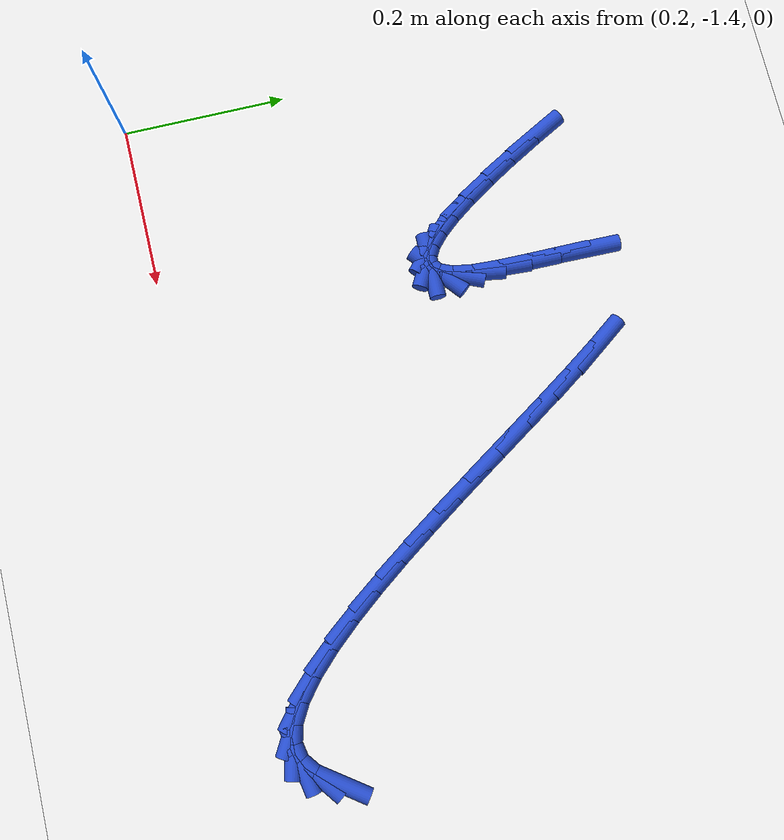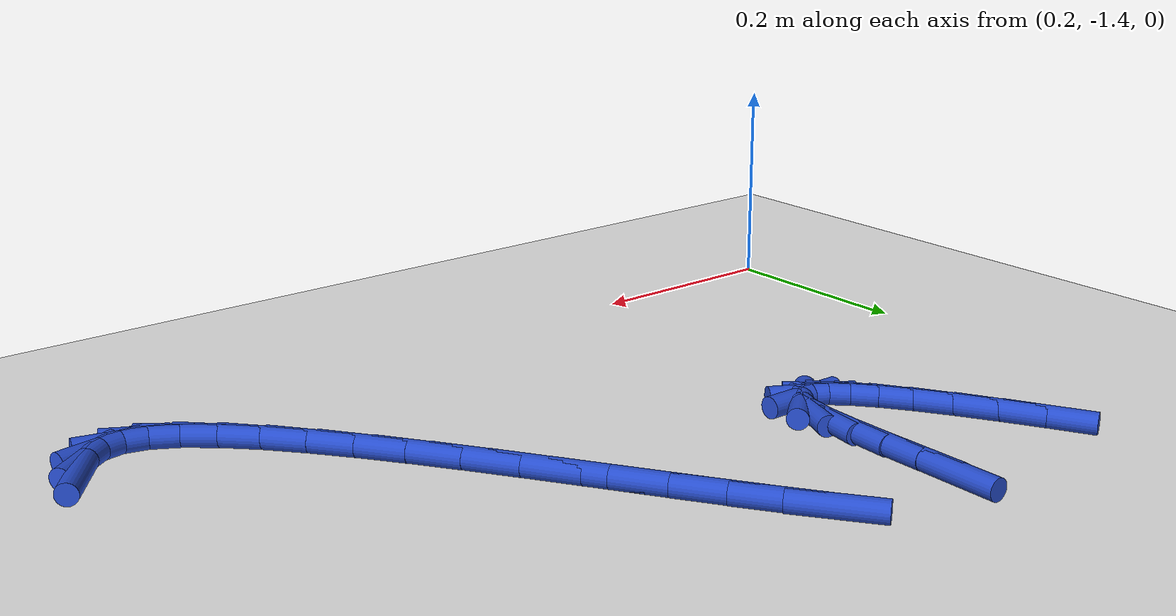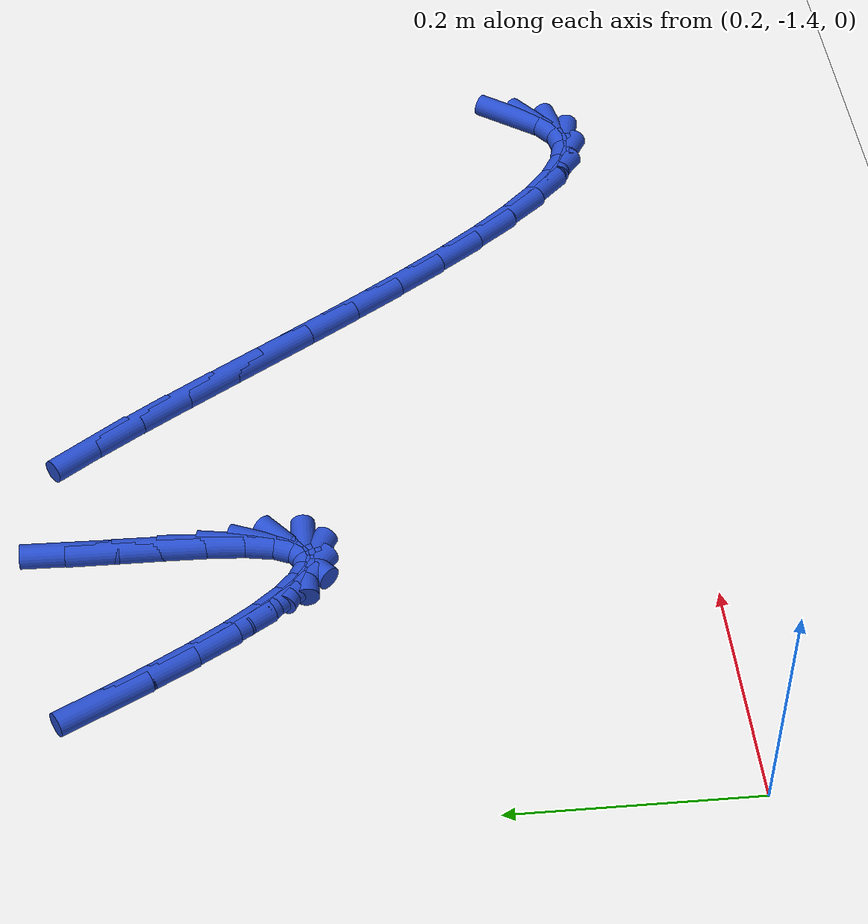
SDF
<sdf version="1.6">
 <world name="default">
  <model name="ground_plane">
   <static>1</static>
   <link name="link">
    <collision name="collision">
     <geometry><plane><normal>0 0 1</normal><size>100 100</size></plane></geometry>
     <surface><friction><ode><mu>100</mu><mu2>50</mu2></ode></friction></surface>
    </collision>
    <visual name="visual">
     <cast_shadows>0</cast_shadows>
     <geometry><plane><normal>0 0 1</normal><size>100 100</size></plane></geometry>
     <material>
      <script><uri>file://media/materials/scripts/gazebo.material</uri><name>Gazebo/WhiteGlow</name></script>
     </material>
    </visual>
   </link>
  </model>
  <model name="line">
   <link name="link_204">
    <pose>1.0149358839351472 -1.315371660204487 0.01 0 1.57 0.9497210597494069</pose>
    <collision name="collision">
     <geometry><cylinder><radius>0.01</radius><length>0.08</length></cylinder></geometry>
    </collision>
    <visual name="visual">
     <material>
      <script><name>Gazebo/Blue</name><uri>file://media/materials/scripts/gazebo.material</uri></script>
     </material>
     <geometry><cylinder><radius>0.01</radius><length>0.08</length></cylinder></geometry>
    </visual>
   </link>
   <link name="link_205">
    <pose>0.9994943688359417 -1.3369520810400668 0.01 0 1.57 0.6536612159513255</pose>
    <collision name="collision">
     <geometry><cylinder><radius>0.01</radius><length>0.08</length></cylinder></geometry>
    </collision>
    <visual name="visual">
     <material>
      <script><name>Gazebo/Blue</name><uri>file://media/materials/scripts/gazebo.material</uri></script>
     </material>
     <geometry><cylinder><radius>0.01</radius><length>0.08</length></cylinder></geometry>
    </visual>
   </link>
   <link name="link_206">
    <pose>0.9824374480888939 -1.3500176417549608 0.01 0 1.57 0.18041775010334993</pose>
    <collision name="collision">
     <geometry><cylinder><radius>0.01</radius><length>0.08</length></cylinder></geometry>
    </collision>
    <visual name="visual">
     <material>
      <script><name>Gazebo/Blue</name><uri>file://media/materials/scripts/gazebo.material</uri></script>
     </material>
     <geometry><cylinder><radius>0.01</radius><length>0.08</length></cylinder></geometry>
    </visual>
   </link>
   <link name="link_207">
    <pose>0.9631483671757025 -1.3535359921976053 0.01 0 1.57 -0.24284969932576397</pose>
    <collision name="collision">
     <geometry><cylinder><radius>0.01</radius><length>0.08</length></cylinder></geometry>
    </collision>
    <visual name="visual">
     <material>
      <script><name>Gazebo/Blue</name><uri>file://media/materials/scripts/gazebo.material</uri></script>
     </material>
     <geometry><cylinder><radius>0.01</radius><length>0.08</length></cylinder></geometry>
    </visual>
   </link>
   <link name="link_208">
    <pose>0.9418026137665831 -1.3482478128401583 0.01 0 1.57 -0.5171650507139692</pose>
    <collision name="collision">
     <geometry><cylinder><radius>0.01</radius><length>0.08</length></cylinder></geometry>
    </collision>
    <visual name="visual">
     <material>
      <script><name>Gazebo/Blue</name><uri>file://media/materials/scripts/gazebo.material</uri></script>
     </material>
     <geometry><cylinder><radius>0.01</radius><length>0.08</length></cylinder></geometry>
    </visual>
   </link>
   <link name="link_209">
    <pose>0.918661024050399 -1.3350847933429386 0.01 0 1.57 -0.6836927259176917</pose>
    <collision name="collision">
     <geometry><cylinder><radius>0.01</radius><length>0.08</length></cylinder></geometry>
    </collision>
    <visual name="visual">
     <material>
      <script><name>Gazebo/Blue</name><uri>file://media/materials/scripts/gazebo.material</uri></script>
     </material>
     <geometry><cylinder><radius>0.01</radius><length>0.08</length></cylinder></geometry>
    </visual>
   </link>
   <link name="link_210">
    <pose>0.893984434216017 -1.3149786233662681 0.01 0 1.57 -0.7886031113159906</pose>
    <collision name="collision">
     <geometry><cylinder><radius>0.01</radius><length>0.08</length></cylinder></geometry>
    </collision>
    <visual name="visual">
     <material>
      <script><name>Gazebo/Blue</name><uri>file://media/materials/scripts/gazebo.material</uri></script>
     </material>
     <geometry><cylinder><radius>0.01</radius><length>0.08</length></cylinder></geometry>
    </visual>
   </link>
   <link name="link_211">
    <pose>0.8680336804523 -1.288860992570465 0.01 0 1.57 -0.8580556711346509</pose>
    <collision name="collision">
     <geometry><cylinder><radius>0.01</radius><length>0.08</length></cylinder></geometry>
    </collision>
    <visual name="visual">
     <material>
      <script><name>Gazebo/Blue</name><uri>file://media/materials/scripts/gazebo.material</uri></script>
     </material>
     <geometry><cylinder><radius>0.01</radius><length>0.08</length></cylinder></geometry>
    </visual>
   </link>
   <link name="link_212">
    <pose>0.8410695989481146 -1.2576635906158513 0.01 0 1.57 -0.905787795485792</pose>
    <collision name="collision">
     <geometry><cylinder><radius>0.01</radius><length>0.08</length></cylinder></geometry>
    </collision>
    <visual name="visual">
     <material>
      <script><name>Gazebo/Blue</name><uri>file://media/materials/scripts/gazebo.material</uri></script>
     </material>
     <geometry><cylinder><radius>0.01</radius><length>0.08</length></cylinder></geometry>
    </visual>
   </link>
   <link name="link_213">
    <pose>0.8133530258923243 -1.2223181071627458 0.01 0 1.57 -0.9392370712360703</pose>
    <collision name="collision">
     <geometry><cylinder><radius>0.01</radius><length>0.08</length></cylinder></geometry>
    </collision>
    <visual name="visual">
     <material>
      <script><name>Gazebo/Blue</name><uri>file://media/materials/scripts/gazebo.material</uri></script>
     </material>
     <geometry><cylinder><radius>0.01</radius><length>0.08</length></cylinder></geometry>
    </visual>
   </link>
   <link name="link_214">
    <pose>0.7851447974737956 -1.1837562318714703 0.01 0 1.57 -0.9625978755651557</pose>
    <collision name="collision">
     <geometry><cylinder><radius>0.01</radius><length>0.08</length></cylinder></geometry>
    </collision>
    <visual name="visual">
     <material>
      <script><name>Gazebo/Blue</name><uri>file://media/materials/scripts/gazebo.material</uri></script>
     </material>
     <geometry><cylinder><radius>0.01</radius><length>0.08</length></cylinder></geometry>
    </visual>
   </link>
   <link name="link_215">
    <pose>0.7567057498813924 -1.142909654402344 0.01 0 1.57 -0.9782799273695868</pose>
    <collision name="collision">
     <geometry><cylinder><radius>0.01</radius><length>0.08</length></cylinder></geometry>
    </collision>
    <visual name="visual">
     <material>
      <script><name>Gazebo/Blue</name><uri>file://media/materials/scripts/gazebo.material</uri></script>
     </material>
     <geometry><cylinder><radius>0.01</radius><length>0.08</length></cylinder></geometry>
    </visual>
   </link>
   <link name="link_216">
    <pose>0.7282967193039789 -1.100710064415686 0.01 0 1.57 -0.987613337950633</pose>
    <collision name="collision">
     <geometry><cylinder><radius>0.01</radius><length>0.08</length></cylinder></geometry>
    </collision>
    <visual name="visual">
     <material>
      <script><name>Gazebo/Blue</name><uri>file://media/materials/scripts/gazebo.material</uri></script>
     </material>
     <geometry><cylinder><radius>0.01</radius><length>0.08</length></cylinder></geometry>
    </visual>
   </link>
   <link name="link_217">
    <pose>0.7001785419304215 -1.0580891515718185 0.01 0 1.57 -0.9911787876577066</pose>
    <collision name="collision">
     <geometry><cylinder><radius>0.01</radius><length>0.08</length></cylinder></geometry>
    </collision>
    <visual name="visual">
     <material>
      <script><name>Gazebo/Blue</name><uri>file://media/materials/scripts/gazebo.material</uri></script>
     </material>
     <geometry><cylinder><radius>0.01</radius><length>0.08</length></cylinder></geometry>
    </visual>
   </link>
   <link name="link_218">
    <pose>0.6726120539495836 -1.0159786055310593 0.01 0 1.57 -0.9889190592659488</pose>
    <collision name="collision">
     <geometry><cylinder><radius>0.01</radius><length>0.08</length></cylinder></geometry>
    </collision>
    <visual name="visual">
     <material>
      <script><name>Gazebo/Blue</name><uri>file://media/materials/scripts/gazebo.material</uri></script>
     </material>
     <geometry><cylinder><radius>0.01</radius><length>0.08</length></cylinder></geometry>
    </visual>
   </link>
   <link name="link_219">
    <pose>0.6458580915503318 -0.9753101159537316 0.01 0 1.57 -0.9800729635924398</pose>
    <collision name="collision">
     <geometry><cylinder><radius>0.01</radius><length>0.08</length></cylinder></geometry>
    </collision>
    <visual name="visual">
     <material>
      <script><name>Gazebo/Blue</name><uri>file://media/materials/scripts/gazebo.material</uri></script>
     </material>
     <geometry><cylinder><radius>0.01</radius><length>0.08</length></cylinder></geometry>
    </visual>
   </link>
   <link name="link_220">
    <pose>0.6201774909215295 -0.937015372500153 0.01 0 1.57 -0.962878497901356</pose>
    <collision name="collision">
     <geometry><cylinder><radius>0.01</radius><length>0.08</length></cylinder></geometry>
    </collision>
    <visual name="visual">
     <material>
      <script><name>Gazebo/Blue</name><uri>file://media/materials/scripts/gazebo.material</uri></script>
     </material>
     <geometry><cylinder><radius>0.01</radius><length>0.08</length></cylinder></geometry>
    </visual>
   </link>
   <link name="link_221">
    <pose>0.595831088252043 -0.9020260648306455 0.01 0 1.57 -0.9338362417776053</pose>
    <collision name="collision">
     <geometry><cylinder><radius>0.01</radius><length>0.08</length></cylinder></geometry>
    </collision>
    <visual name="visual">
     <material>
      <script><name>Gazebo/Blue</name><uri>file://media/materials/scripts/gazebo.material</uri></script>
     </material>
     <geometry><cylinder><radius>0.01</radius><length>0.08</length></cylinder></geometry>
    </visual>
   </link>
   <link name="link_230">
    <pose>0.4780958536207328 -0.88398374692917 0.01 0 1.57 1.5548221537109015</pose>
    <collision name="collision">
     <geometry><cylinder><radius>0.01</radius><length>0.08</length></cylinder></geometry>
    </collision>
    <visual name="visual">
     <material>
      <script><name>Gazebo/Blue</name><uri>file://media/materials/scripts/gazebo.material</uri></script>
     </material>
     <geometry><cylinder><radius>0.01</radius><length>0.08</length></cylinder></geometry>
    </visual>
   </link>
   <link name="link_231">
    <pose>0.47751563077158804 -0.9203032166519303 0.01 0 1.57 1.5699784735885893</pose>
    <collision name="collision">
     <geometry><cylinder><radius>0.01</radius><length>0.08</length></cylinder></geometry>
    </collision>
    <visual name="visual">
     <material>
      <script><name>Gazebo/Blue</name><uri>file://media/materials/scripts/gazebo.material</uri></script>
     </material>
     <geometry><cylinder><radius>0.01</radius><length>0.08</length></cylinder></geometry>
    </visual>
   </link>
   <link name="link_232">
    <pose>0.47748473909557354 -0.9580748716244997 0.01 0 1.57 1.559074639318215</pose>
    <collision name="collision">
     <geometry><cylinder><radius>0.01</radius><length>0.08</length></cylinder></geometry>
    </collision>
    <visual name="visual">
     <material>
      <script><name>Gazebo/Blue</name><uri>file://media/materials/scripts/gazebo.material</uri></script>
     </material>
     <geometry><cylinder><radius>0.01</radius><length>0.08</length></cylinder></geometry>
    </visual>
   </link>
   <link name="link_233">
    <pose>0.47706074122197817 -0.9942452997686576 0.01 0 1.57 1.5150237534952389</pose>
    <collision name="collision">
     <geometry><cylinder><radius>0.01</radius><length>0.08</length></cylinder></geometry>
    </collision>
    <visual name="visual">
     <material>
      <script><name>Gazebo/Blue</name><uri>file://media/materials/scripts/gazebo.material</uri></script>
     </material>
     <geometry><cylinder><radius>0.01</radius><length>0.08</length></cylinder></geometry>
    </visual>
   </link>
   <link name="link_234">
    <pose>0.47530119978009094 -1.0257610890061788 0.01 0 1.57 1.4052425818956311</pose>
    <collision name="collision">
     <geometry><cylinder><radius>0.01</radius><length>0.08</length></cylinder></geometry>
    </collision>
    <visual name="visual">
     <material>
      <script><name>Gazebo/Blue</name><uri>file://media/materials/scripts/gazebo.material</uri></script>
     </material>
     <geometry><cylinder><radius>0.01</radius><length>0.08</length></cylinder></geometry>
    </visual>
   </link>
   <link name="link_235">
    <pose>0.47130263105581605 -1.0496927181095579 0.01 0 1.57 1.1683371053055887</pose>
    <collision name="collision">
     <geometry><cylinder><radius>0.01</radius><length>0.08</length></cylinder></geometry>
    </collision>
    <visual name="visual">
     <material>
      <script><name>Gazebo/Blue</name><uri>file://media/materials/scripts/gazebo.material</uri></script>
     </material>
     <geometry><cylinder><radius>0.01</radius><length>0.08</length></cylinder></geometry>
    </visual>
   </link>
   <link name="link_236">
    <pose>0.4647686799035919 -1.0650416187164535 0.01 0 1.57 0.6873800121558942</pose>
    <collision name="collision">
     <geometry><cylinder><radius>0.01</radius><length>0.08</length></cylinder></geometry>
    </collision>
    <visual name="visual">
     <material>
      <script><name>Gazebo/Blue</name><uri>file://media/materials/scripts/gazebo.material</uri></script>
     </material>
     <geometry><cylinder><radius>0.01</radius><length>0.08</length></cylinder></geometry>
    </visual>
   </link>
   <link name="link_237">
    <pose>0.45588309045842246 -1.072336162769125 0.01 0 1.57 -0.01718527962207936</pose>
    <collision name="collision">
     <geometry><cylinder><radius>0.01</radius><length>0.08</length></cylinder></geometry>
    </collision>
    <visual name="visual">
     <material>
      <script><name>Gazebo/Blue</name><uri>file://media/materials/scripts/gazebo.material</uri></script>
     </material>
     <geometry><cylinder><radius>0.01</radius><length>0.08</length></cylinder></geometry>
    </visual>
   </link>
   <link name="link_238">
    <pose>0.44484271497074485 -1.0721464121489426 0.01 0 1.57 -0.5001762336197009</pose>
    <collision name="collision">
     <geometry><cylinder><radius>0.01</radius><length>0.08</length></cylinder></geometry>
    </collision>
    <visual name="visual">
     <material>
      <script><name>Gazebo/Blue</name><uri>file://media/materials/scripts/gazebo.material</uri></script>
     </material>
     <geometry><cylinder><radius>0.01</radius><length>0.08</length></cylinder></geometry>
    </visual>
   </link>
   <link name="link_239">
    <pose>0.4318444056909978 -1.0650424287372784 0.01 0 1.57 -0.7389462924918312</pose>
    <collision name="collision">
     <geometry><cylinder><radius>0.01</radius><length>0.08</length></cylinder></geometry>
    </collision>
    <visual name="visual">
     <material>
      <script><name>Gazebo/Blue</name><uri>file://media/materials/scripts/gazebo.material</uri></script>
     </material>
     <geometry><cylinder><radius>0.01</radius><length>0.08</length></cylinder></geometry>
    </visual>
   </link>
   <link name="link_240">
    <pose>0.41708501486961813 -1.0515942744155022 0.01 0 1.57 -0.8667646481724511</pose>
    <collision name="collision">
     <geometry><cylinder><radius>0.01</radius><length>0.08</length></cylinder></geometry>
    </collision>
    <visual name="visual">
     <material>
      <script><name>Gazebo/Blue</name><uri>file://media/materials/scripts/gazebo.material</uri></script>
     </material>
     <geometry><cylinder><radius>0.01</radius><length>0.08</length></cylinder></geometry>
    </visual>
   </link>
   <link name="link_241">
    <pose>0.40076139475704453 -1.0323720110649854 0.01 0 1.57 -0.9439734190319808</pose>
    <collision name="collision">
     <geometry><cylinder><radius>0.01</radius><length>0.08</length></cylinder></geometry>
    </collision>
    <visual name="visual">
     <material>
      <script><name>Gazebo/Blue</name><uri>file://media/materials/scripts/gazebo.material</uri></script>
     </material>
     <geometry><cylinder><radius>0.01</radius><length>0.08</length></cylinder></geometry>
    </visual>
   </link>
   <link name="link_242">
    <pose>0.383070397603714 -1.007945700567098 0.01 0 1.57 -0.995090760314832</pose>
    <collision name="collision">
     <geometry><cylinder><radius>0.01</radius><length>0.08</length></cylinder></geometry>
    </collision>
    <visual name="visual">
     <material>
      <script><name>Gazebo/Blue</name><uri>file://media/materials/scripts/gazebo.material</uri></script>
     </material>
     <geometry><cylinder><radius>0.01</radius><length>0.08</length></cylinder></geometry>
    </visual>
   </link>
   <link name="link_243">
    <pose>0.36420887566006516 -0.9788854048032117 0.01 0 1.57 -1.031250490092566</pose>
    <collision name="collision">
     <geometry><cylinder><radius>0.01</radius><length>0.08</length></cylinder></geometry>
    </collision>
    <visual name="visual">
     <material>
      <script><name>Gazebo/Blue</name><uri>file://media/materials/scripts/gazebo.material</uri></script>
     </material>
     <geometry><cylinder><radius>0.01</radius><length>0.08</length></cylinder></geometry>
    </visual>
   </link>
   <link name="link_244">
    <pose>0.3443736811765349 -0.9457611856546961 0.01 0 1.57 -1.0581093408665123</pose>
    <collision name="collision">
     <geometry><cylinder><radius>0.01</radius><length>0.08</length></cylinder></geometry>
    </collision>
    <visual name="visual">
     <material>
      <script><name>Gazebo/Blue</name><uri>file://media/materials/scripts/gazebo.material</uri></script>
     </material>
     <geometry><cylinder><radius>0.01</radius><length>0.08</length></cylinder></geometry>
    </visual>
   </link>
   <link name="link_245">
    <pose>0.3237616664035619 -0.9091431050029237 0.01 0 1.57 -1.0788136030617235</pose>
    <collision name="collision">
     <geometry><cylinder><radius>0.01</radius><length>0.08</length></cylinder></geometry>
    </collision>
    <visual name="visual">
     <material>
      <script><name>Gazebo/Blue</name><uri>file://media/materials/scripts/gazebo.material</uri></script>
     </material>
     <geometry><cylinder><radius>0.01</radius><length>0.08</length></cylinder></geometry>
    </visual>
   </link>
  </model>
 </world>
</sdf>
